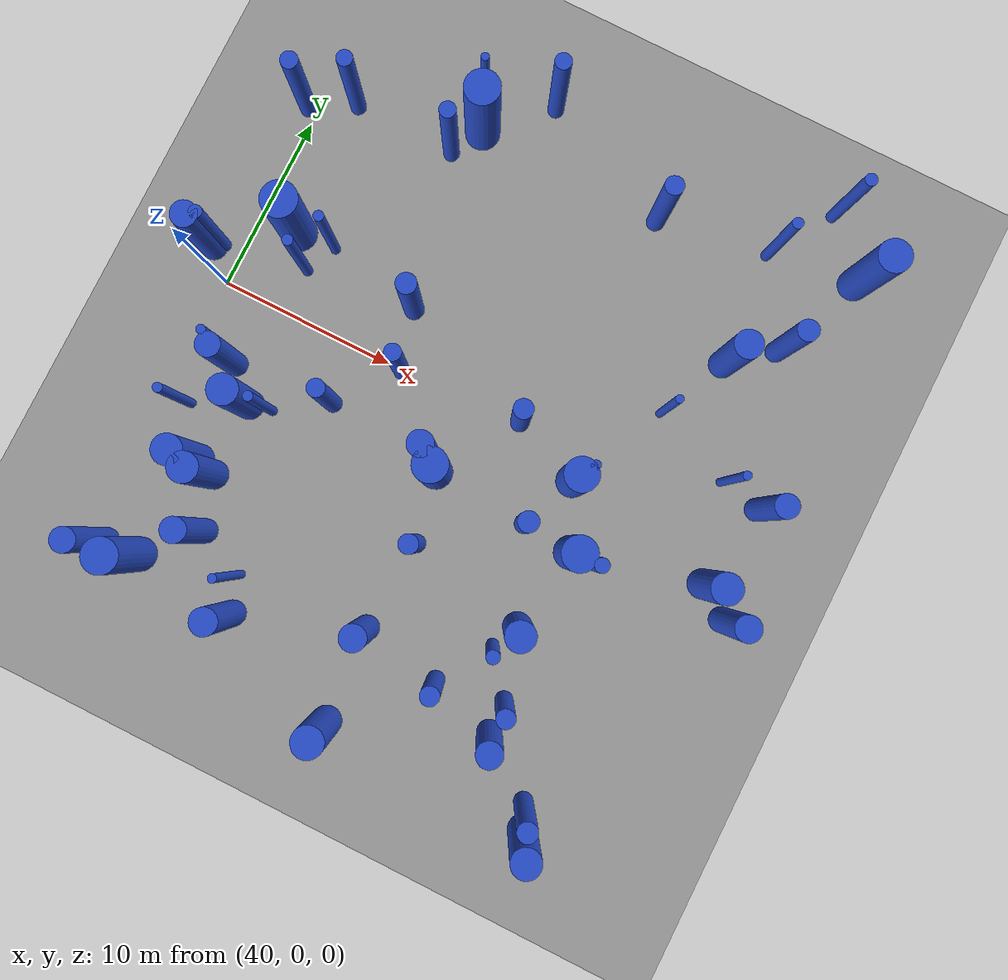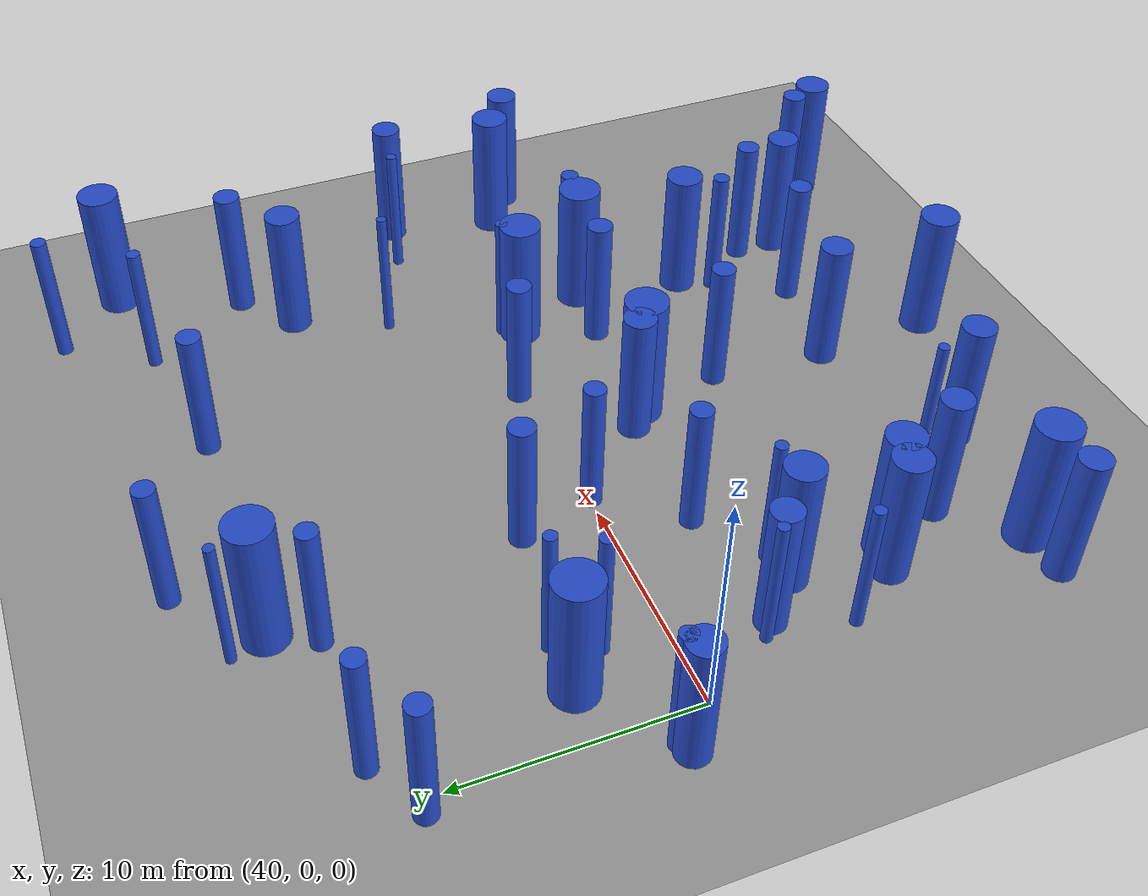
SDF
<sdf version="1.7">
 <world name="default">
  <model name="ground_plane_map">
   <static>1</static>
   <link name="link">
    <collision name="collision">
     <geometry><plane><normal>0 0 1</normal><size>110 50</size></plane></geometry>
     <surface>
      <contact><collide_without_contact>1</collide_without_contact></contact>
      <friction><ode><mu>100</mu><mu2>50</mu2></ode></friction>
     </surface>
    </collision>
    <visual name="visual">
     <cast_shadows>0</cast_shadows>
     <geometry><plane><normal>0 0 1</normal><size>110 50</size></plane></geometry>
     <material>
      <script><uri>file://media/materials/scripts/gazebo.material</uri><name>Gazebo/Grey</name></script>
     </material>
    </visual>
   </link>
   <pose>51 0 0 0 -0 0</pose>
  </model>
  <model name="0">
   <static>1</static>
   <link name="link">
    <inertial>
     <mass>2</mass>
     <inertia><ixx>6.32511</ixx><ixy>0</ixy><ixz>0</ixz><iyy>6.32511</iyy><iyz>0</iyz><izz>0.650222</izz></inertia>
    </inertial>
    <collision name="collision">
     <geometry><cylinder><length>6</length><radius>0.806364</radius></cylinder></geometry>
     <surface><contact><collide_without_contact>1</collide_without_contact></contact></surface>
    </collision>
    <visual name="visual">
     <geometry><cylinder><length>6</length><radius>0.806364</radius></cylinder></geometry>
     <material>
      <script><uri>file://media/materials/scripts/gazebo.material</uri><name>Gazebo/Blue</name></script>
     </material>
    </visual>
    <gravity>0</gravity>
   </link>
   <pose>43.1853 -9.25453 3 0 -0 0</pose>
  </model>
  <model name="3">
   <static>1</static>
   <link name="link">
    <inertial>
     <mass>2</mass>
     <inertia><ixx>6.32373</ixx><ixy>0</ixy><ixz>0</ixz><iyy>6.32373</iyy><iyz>0</iyz><izz>0.647451</izz></inertia>
    </inertial>
    <collision name="collision">
     <geometry><cylinder><length>6</length><radius>0.804643</radius></cylinder></geometry>
     <surface><contact><collide_without_contact>1</collide_without_contact></contact></surface>
    </collision>
    <visual name="visual">
     <geometry><cylinder><length>6</length><radius>0.804643</radius></cylinder></geometry>
     <material>
      <script><uri>file://media/materials/scripts/gazebo.material</uri><name>Gazebo/Blue</name></script>
     </material>
    </visual>
    <gravity>0</gravity>
   </link>
   <pose>62.6464 -9.57824 3 0 -0 0</pose>
  </model>
  <model name="6">
   <static>1</static>
   <link name="link">
    <inertial>
     <mass>2</mass>
     <inertia>
      <ixx>6.03936</ixx>
      <ixy>0</ixy>
      <ixz>0</ixz>
      <iyy>6.03936</iyy>
      <iyz>0</iyz>
      <izz>0.0787145</izz>
     </inertia>
    </inertial>
    <collision name="collision">
     <geometry><cylinder><length>6</length><radius>0.280561</radius></cylinder></geometry>
     <surface><contact><collide_without_contact>1</collide_without_contact></contact></surface>
    </collision>
    <visual name="visual">
     <geometry><cylinder><length>6</length><radius>0.280561</radius></cylinder></geometry>
     <material>
      <script><uri>file://media/materials/scripts/gazebo.material</uri><name>Gazebo/Blue</name></script>
     </material>
    </visual>
    <gravity>0</gravity>
   </link>
   <pose>44.4541 4.37326 3 0 -0 0</pose>
  </model>
  <model name="7">
   <static>1</static>
   <link name="link">
    <inertial>
     <mass>2</mass>
     <inertia><ixx>6.47364</ixx><ixy>0</ixy><ixz>0</ixz><iyy>6.47364</iyy><iyz>0</iyz><izz>0.947284</izz></inertia>
    </inertial>
    <collision name="collision">
     <geometry><cylinder><length>6</length><radius>0.973285</radius></cylinder></geometry>
     <surface><contact><collide_without_contact>1</collide_without_contact></contact></surface>
    </collision>
    <visual name="visual">
     <geometry><cylinder><length>6</length><radius>0.973285</radius></cylinder></geometry>
     <material>
      <script><uri>file://media/materials/scripts/gazebo.material</uri><name>Gazebo/Blue</name></script>
     </material>
    </visual>
    <gravity>0</gravity>
   </link>
   <pose>48.7457 13.9013 3 0 -0 0</pose>
  </model>
  <model name="8">
   <static>1</static>
   <link name="link">
    <inertial>
     <mass>2</mass>
     <inertia><ixx>6.35619</ixx><ixy>0</ixy><ixz>0</ixz><iyy>6.35619</iyy><iyz>0</iyz><izz>0.712374</izz></inertia>
    </inertial>
    <collision name="collision">
     <geometry><cylinder><length>6</length><radius>0.844022</radius></cylinder></geometry>
     <surface><contact><collide_without_contact>1</collide_without_contact></contact></surface>
    </collision>
    <visual name="visual">
     <geometry><cylinder><length>6</length><radius>0.844022</radius></cylinder></geometry>
     <material>
      <script><uri>file://media/materials/scripts/gazebo.material</uri><name>Gazebo/Blue</name></script>
     </material>
    </visual>
    <gravity>0</gravity>
   </link>
   <pose>55.7877 -18.618 3 0 -0 0</pose>
  </model>
  <model name="13">
   <static>1</static>
   <link name="link">
    <inertial>
     <mass>2</mass>
     <inertia><ixx>6.10399</ixx><ixy>0</ixy><ixz>0</ixz><iyy>6.10399</iyy><iyz>0</iyz><izz>0.207976</izz></inertia>
    </inertial>
    <collision name="collision">
     <geometry><cylinder><length>6</length><radius>0.456044</radius></cylinder></geometry>
     <surface><contact><collide_without_contact>1</collide_without_contact></contact></surface>
    </collision>
    <visual name="visual">
     <geometry><cylinder><length>6</length><radius>0.456044</radius></cylinder></geometry>
     <material>
      <script><uri>file://media/materials/scripts/gazebo.material</uri><name>Gazebo/Blue</name></script>
     </material>
    </visual>
    <gravity>0</gravity>
   </link>
   <pose>51.7868 16.9186 3 0 -0 0</pose>
  </model>
  <model name="14">
   <static>1</static>
   <link name="link">
    <inertial>
     <mass>2</mass>
     <inertia><ixx>6.20545</ixx><ixy>0</ixy><ixz>0</ixz><iyy>6.20545</iyy><iyz>0</iyz><izz>0.410899</izz></inertia>
    </inertial>
    <collision name="collision">
     <geometry><cylinder><length>6</length><radius>0.641014</radius></cylinder></geometry>
     <surface><contact><collide_without_contact>1</collide_without_contact></contact></surface>
    </collision>
    <visual name="visual">
     <geometry><cylinder><length>6</length><radius>0.641014</radius></cylinder></geometry>
     <material>
      <script><uri>file://media/materials/scripts/gazebo.material</uri><name>Gazebo/Blue</name></script>
     </material>
    </visual>
    <gravity>0</gravity>
   </link>
   <pose>71.3913 1.83682 3 0 -0 0</pose>
  </model>
  <model name="16">
   <static>1</static>
   <link name="link">
    <inertial>
     <mass>2</mass>
     <inertia><ixx>6.15456</ixx><ixy>0</ixy><ixz>0</ixz><iyy>6.15456</iyy><iyz>0</iyz><izz>0.309126</izz></inertia>
    </inertial>
    <collision name="collision">
     <geometry><cylinder><length>6</length><radius>0.555991</radius></cylinder></geometry>
     <surface><contact><collide_without_contact>1</collide_without_contact></contact></surface>
    </collision>
    <visual name="visual">
     <geometry><cylinder><length>6</length><radius>0.555991</radius></cylinder></geometry>
     <material>
      <script><uri>file://media/materials/scripts/gazebo.material</uri><name>Gazebo/Blue</name></script>
     </material>
    </visual>
    <gravity>0</gravity>
   </link>
   <pose>60.5216 -4.47597 3 0 -0 0</pose>
  </model>
  <model name="18">
   <static>1</static>
   <link name="link">
    <inertial>
     <mass>2</mass>
     <inertia><ixx>6.26305</ixx><ixy>0</ixy><ixz>0</ixz><iyy>6.26305</iyy><iyz>0</iyz><izz>0.5261</izz></inertia>
    </inertial>
    <collision name="collision">
     <geometry><cylinder><length>6</length><radius>0.725328</radius></cylinder></geometry>
     <surface><contact><collide_without_contact>1</collide_without_contact></contact></surface>
    </collision>
    <visual name="visual">
     <geometry><cylinder><length>6</length><radius>0.725328</radius></cylinder></geometry>
     <material>
      <script><uri>file://media/materials/scripts/gazebo.material</uri><name>Gazebo/Blue</name></script>
     </material>
    </visual>
    <gravity>0</gravity>
   </link>
   <pose>48.6871 -15.812 3 0 -0 0</pose>
  </model>
  <model name="20">
   <static>1</static>
   <link name="link">
    <inertial>
     <mass>2</mass>
     <inertia><ixx>6.44036</ixx><ixy>0</ixy><ixz>0</ixz><iyy>6.44036</iyy><iyz>0</iyz><izz>0.880718</izz></inertia>
    </inertial>
    <collision name="collision">
     <geometry><cylinder><length>6</length><radius>0.938466</radius></cylinder></geometry>
     <surface><contact><collide_without_contact>1</collide_without_contact></contact></surface>
    </collision>
    <visual name="visual">
     <geometry><cylinder><length>6</length><radius>0.938466</radius></cylinder></geometry>
     <material>
      <script><uri>file://media/materials/scripts/gazebo.material</uri><name>Gazebo/Blue</name></script>
     </material>
    </visual>
    <gravity>0</gravity>
   </link>
   <pose>54.9838 -4.14413 3 0 -0 0</pose>
  </model>
  <model name="24">
   <static>1</static>
   <link name="link">
    <inertial>
     <mass>2</mass>
     <inertia><ixx>6.03535</ixx><ixy>0</ixy><ixz>0</ixz><iyy>6.03535</iyy><iyz>0</iyz><izz>0.070702</izz></inertia>
    </inertial>
    <collision name="collision">
     <geometry><cylinder><length>6</length><radius>0.265898</radius></cylinder></geometry>
     <surface><contact><collide_without_contact>1</collide_without_contact></contact></surface>
    </collision>
    <visual name="visual">
     <geometry><cylinder><length>6</length><radius>0.265898</radius></cylinder></geometry>
     <material>
      <script><uri>file://media/materials/scripts/gazebo.material</uri><name>Gazebo/Blue</name></script>
     </material>
    </visual>
    <gravity>0</gravity>
   </link>
   <pose>62.2183 -0.535023 3 0 -0 0</pose>
  </model>
  <model name="29">
   <static>1</static>
   <link name="link">
    <inertial>
     <mass>2</mass>
     <inertia><ixx>6.0245</ixx><ixy>0</ixy><ixz>0</ixz><iyy>6.0245</iyy><iyz>0</iyz><izz>0.0489991</izz></inertia>
    </inertial>
    <collision name="collision">
     <geometry><cylinder><length>6</length><radius>0.221357</radius></cylinder></geometry>
     <surface><contact><collide_without_contact>1</collide_without_contact></contact></surface>
    </collision>
    <visual name="visual">
     <geometry><cylinder><length>6</length><radius>0.221357</radius></cylinder></geometry>
     <material>
      <script><uri>file://media/materials/scripts/gazebo.material</uri><name>Gazebo/Blue</name></script>
     </material>
    </visual>
    <gravity>0</gravity>
   </link>
   <pose>64.4402 4.20646 3 0 -0 0</pose>
  </model>
  <model name="37">
   <static>1</static>
   <link name="link">
    <inertial>
     <mass>2</mass>
     <inertia><ixx>6.05629</ixx><ixy>0</ixy><ixz>0</ixz><iyy>6.05629</iyy><iyz>0</iyz><izz>0.112587</izz></inertia>
    </inertial>
    <collision name="collision">
     <geometry><cylinder><length>6</length><radius>0.33554</radius></cylinder></geometry>
     <surface><contact><collide_without_contact>1</collide_without_contact></contact></surface>
    </collision>
    <visual name="visual">
     <geometry><cylinder><length>6</length><radius>0.33554</radius></cylinder></geometry>
     <material>
      <script><uri>file://media/materials/scripts/gazebo.material</uri><name>Gazebo/Blue</name></script>
     </material>
    </visual>
    <gravity>0</gravity>
   </link>
   <pose>68.1482 18.3489 3 0 -0 0</pose>
  </model>
  <model name="39">
   <static>1</static>
   <link name="link">
    <inertial>
     <mass>2</mass>
     <inertia><ixx>6.22946</ixx><ixy>0</ixy><ixz>0</ixz><iyy>6.22946</iyy><iyz>0</iyz><izz>0.458916</izz></inertia>
    </inertial>
    <collision name="collision">
     <geometry><cylinder><length>6</length><radius>0.677433</radius></cylinder></geometry>
     <surface><contact><collide_without_contact>1</collide_without_contact></contact></surface>
    </collision>
    <visual name="visual">
     <geometry><cylinder><length>6</length><radius>0.677433</radius></cylinder></geometry>
     <material>
      <script><uri>file://media/materials/scripts/gazebo.material</uri><name>Gazebo/Blue</name></script>
     </material>
    </visual>
    <gravity>0</gravity>
   </link>
   <pose>45.3096 -12.5666 3 0 -0 0</pose>
  </model>
  <model name="40">
   <static>1</static>
   <link name="link">
    <inertial>
     <mass>2</mass>
     <inertia><ixx>6.13935</ixx><ixy>0</ixy><ixz>0</ixz><iyy>6.13935</iyy><iyz>0</iyz><izz>0.278704</izz></inertia>
    </inertial>
    <collision name="collision">
     <geometry><cylinder><length>6</length><radius>0.527924</radius></cylinder></geometry>
     <surface><contact><collide_without_contact>1</collide_without_contact></contact></surface>
    </collision>
    <visual name="visual">
     <geometry><cylinder><length>6</length><radius>0.527924</radius></cylinder></geometry>
     <material>
      <script><uri>file://media/materials/scripts/gazebo.material</uri><name>Gazebo/Blue</name></script>
     </material>
    </visual>
    <gravity>0</gravity>
   </link>
   <pose>57.8383 0.334925 3 0 -0 0</pose>
  </model>
  <model name="45">
   <static>1</static>
   <link name="link">
    <inertial>
     <mass>2</mass>
     <inertia><ixx>6.24281</ixx><ixy>0</ixy><ixz>0</ixz><iyy>6.24281</iyy><iyz>0</iyz><izz>0.485616</izz></inertia>
    </inertial>
    <collision name="collision">
     <geometry><cylinder><length>6</length><radius>0.696861</radius></cylinder></geometry>
     <surface><contact><collide_without_contact>1</collide_without_contact></contact></surface>
    </collision>
    <visual name="visual">
     <geometry><cylinder><length>6</length><radius>0.696861</radius></cylinder></geometry>
     <material>
      <script><uri>file://media/materials/scripts/gazebo.material</uri><name>Gazebo/Blue</name></script>
     </material>
    </visual>
    <gravity>0</gravity>
   </link>
   <pose>72.2614 -4.32324 3 0 -0 0</pose>
  </model>
  <model name="47">
   <static>1</static>
   <link name="link">
    <inertial>
     <mass>2</mass>
     <inertia><ixx>6.07665</ixx><ixy>0</ixy><ixz>0</ixz><iyy>6.07665</iyy><iyz>0</iyz><izz>0.153298</izz></inertia>
    </inertial>
    <collision name="collision">
     <geometry><cylinder><length>6</length><radius>0.391533</radius></cylinder></geometry>
     <surface><contact><collide_without_contact>1</collide_without_contact></contact></surface>
    </collision>
    <visual name="visual">
     <geometry><cylinder><length>6</length><radius>0.391533</radius></cylinder></geometry>
     <material>
      <script><uri>file://media/materials/scripts/gazebo.material</uri><name>Gazebo/Blue</name></script>
     </material>
    </visual>
    <gravity>0</gravity>
   </link>
   <pose>64.6323 -4.75905 3 0 -0 0</pose>
  </model>
  <model name="48">
   <static>1</static>
   <link name="link">
    <inertial>
     <mass>2</mass>
     <inertia><ixx>6.2142</ixx><ixy>0</ixy><ixz>0</ixz><iyy>6.2142</iyy><iyz>0</iyz><izz>0.428398</izz></inertia>
    </inertial>
    <collision name="collision">
     <geometry><cylinder><length>6</length><radius>0.654521</radius></cylinder></geometry>
     <surface><contact><collide_without_contact>1</collide_without_contact></contact></surface>
    </collision>
    <visual name="visual">
     <geometry><cylinder><length>6</length><radius>0.654521</radius></cylinder></geometry>
     <material>
      <script><uri>file://media/materials/scripts/gazebo.material</uri><name>Gazebo/Blue</name></script>
     </material>
    </visual>
    <gravity>0</gravity>
   </link>
   <pose>42.5527 -3.78138 3 0 -0 0</pose>
  </model>
  <model name="49">
   <static>1</static>
   <link name="link">
    <inertial>
     <mass>2</mass>
     <inertia><ixx>6.14289</ixx><ixy>0</ixy><ixz>0</ixz><iyy>6.14289</iyy><iyz>0</iyz><izz>0.285777</izz></inertia>
    </inertial>
    <collision name="collision">
     <geometry><cylinder><length>6</length><radius>0.534581</radius></cylinder></geometry>
     <surface><contact><collide_without_contact>1</collide_without_contact></contact></surface>
    </collision>
    <visual name="visual">
     <geometry><cylinder><length>6</length><radius>0.534581</radius></cylinder></geometry>
     <material>
      <script><uri>file://media/materials/scripts/gazebo.material</uri><name>Gazebo/Blue</name></script>
     </material>
    </visual>
    <gravity>0</gravity>
   </link>
   <pose>67.0462 -17.6442 3 0 -0 0</pose>
  </model>
  <model name="52">
   <static>1</static>
   <link name="link">
    <inertial>
     <mass>2</mass>
     <inertia><ixx>6.10109</ixx><ixy>0</ixy><ixz>0</ixz><iyy>6.10109</iyy><iyz>0</iyz><izz>0.202182</izz></inertia>
    </inertial>
    <collision name="collision">
     <geometry><cylinder><length>6</length><radius>0.449647</radius></cylinder></geometry>
     <surface><contact><collide_without_contact>1</collide_without_contact></contact></surface>
    </collision>
    <visual name="visual">
     <geometry><cylinder><length>6</length><radius>0.449647</radius></cylinder></geometry>
     <material>
      <script><uri>file://media/materials/scripts/gazebo.material</uri><name>Gazebo/Blue</name></script>
     </material>
    </visual>
    <gravity>0</gravity>
   </link>
   <pose>47.719 12.0839 3 0 -0 0</pose>
  </model>
  <model name="57">
   <static>1</static>
   <link name="link">
    <inertial>
     <mass>2</mass>
     <inertia>
      <ixx>6.04355</ixx>
      <ixy>0</ixy>
      <ixz>0</ixz>
      <iyy>6.04355</iyy>
      <iyz>0</iyz>
      <izz>0.0870977</izz>
     </inertia>
    </inertial>
    <collision name="collision">
     <geometry><cylinder><length>6</length><radius>0.295123</radius></cylinder></geometry>
     <surface><contact><collide_without_contact>1</collide_without_contact></contact></surface>
    </collision>
    <visual name="visual">
     <geometry><cylinder><length>6</length><radius>0.295123</radius></cylinder></geometry>
     <material>
      <script><uri>file://media/materials/scripts/gazebo.material</uri><name>Gazebo/Blue</name></script>
     </material>
    </visual>
    <gravity>0</gravity>
   </link>
   <pose>65.8384 14.7256 3 0 -0 0</pose>
  </model>
  <model name="62">
   <static>1</static>
   <link name="link">
    <inertial>
     <mass>2</mass>
     <inertia>
      <ixx>6.02704</ixx>
      <ixy>0</ixy>
      <ixz>0</ixz>
      <iyy>6.02704</iyy>
      <iyz>0</iyz>
      <izz>0.0540705</izz>
     </inertia>
    </inertial>
    <collision name="collision">
     <geometry><cylinder><length>6</length><radius>0.232531</radius></cylinder></geometry>
     <surface><contact><collide_without_contact>1</collide_without_contact></contact></surface>
    </collision>
    <visual name="visual">
     <geometry><cylinder><length>6</length><radius>0.232531</radius></cylinder></geometry>
     <material>
      <script><uri>file://media/materials/scripts/gazebo.material</uri><name>Gazebo/Blue</name></script>
     </material>
    </visual>
    <gravity>0</gravity>
   </link>
   <pose>69.0155 2.30709 3 0 -0 0</pose>
  </model>
  <model name="64">
   <static>1</static>
   <link name="link">
    <inertial>
     <mass>2</mass>
     <inertia><ixx>6.28961</ixx><ixy>0</ixy><ixz>0</ixz><iyy>6.28961</iyy><iyz>0</iyz><izz>0.579212</izz></inertia>
    </inertial>
    <collision name="collision">
     <geometry><cylinder><length>6</length><radius>0.76106</radius></cylinder></geometry>
     <surface><contact><collide_without_contact>1</collide_without_contact></contact></surface>
    </collision>
    <visual name="visual">
     <geometry><cylinder><length>6</length><radius>0.76106</radius></cylinder></geometry>
     <material>
      <script><uri>file://media/materials/scripts/gazebo.material</uri><name>Gazebo/Blue</name></script>
     </material>
    </visual>
    <gravity>0</gravity>
   </link>
   <pose>66.2997 8.17107 3 0 -0 0</pose>
  </model>
  <model name="65">
   <static>1</static>
   <link name="link">
    <inertial>
     <mass>2</mass>
     <inertia><ixx>6.25355</ixx><ixy>0</ixy><ixz>0</ixz><iyy>6.25355</iyy><iyz>0</iyz><izz>0.507105</izz></inertia>
    </inertial>
    <collision name="collision">
     <geometry><cylinder><length>6</length><radius>0.712113</radius></cylinder></geometry>
     <surface><contact><collide_without_contact>1</collide_without_contact></contact></surface>
    </collision>
    <visual name="visual">
     <geometry><cylinder><length>6</length><radius>0.712113</radius></cylinder></geometry>
     <material>
      <script><uri>file://media/materials/scripts/gazebo.material</uri><name>Gazebo/Blue</name></script>
     </material>
    </visual>
    <gravity>0</gravity>
   </link>
   <pose>38.4266 1.46313 3 0 -0 0</pose>
  </model>
  <model name="69">
   <static>1</static>
   <link name="link">
    <inertial>
     <mass>2</mass>
     <inertia><ixx>6.13304</ixx><ixy>0</ixy><ixz>0</ixz><iyy>6.13304</iyy><iyz>0</iyz><izz>0.266084</izz></inertia>
    </inertial>
    <collision name="collision">
     <geometry><cylinder><length>6</length><radius>0.515834</radius></cylinder></geometry>
     <surface><contact><collide_without_contact>1</collide_without_contact></contact></surface>
    </collision>
    <visual name="visual">
     <geometry><cylinder><length>6</length><radius>0.515834</radius></cylinder></geometry>
     <material>
      <script><uri>file://media/materials/scripts/gazebo.material</uri><name>Gazebo/Blue</name></script>
     </material>
    </visual>
    <gravity>0</gravity>
   </link>
   <pose>55.7984 -8.05058 3 0 -0 0</pose>
  </model>
  <model name="71">
   <static>1</static>
   <link name="link">
    <inertial>
     <mass>2</mass>
     <inertia>
      <ixx>6.03294</ixx>
      <ixy>0</ixy>
      <ixz>0</ixz>
      <iyy>6.03294</iyy>
      <iyz>0</iyz>
      <izz>0.0658899</izz>
     </inertia>
    </inertial>
    <collision name="collision">
     <geometry><cylinder><length>6</length><radius>0.25669</radius></cylinder></geometry>
     <surface><contact><collide_without_contact>1</collide_without_contact></contact></surface>
    </collision>
    <visual name="visual">
     <geometry><cylinder><length>6</length><radius>0.25669</radius></cylinder></geometry>
     <material>
      <script><uri>file://media/materials/scripts/gazebo.material</uri><name>Gazebo/Blue</name></script>
     </material>
    </visual>
    <gravity>0</gravity>
   </link>
   <pose>41.3666 -6.77114 3 0 -0 0</pose>
  </model>
  <model name="75">
   <static>1</static>
   <link name="link">
    <inertial>
     <mass>2</mass>
     <inertia><ixx>6.43782</ixx><ixy>0</ixy><ixz>0</ixz><iyy>6.43782</iyy><iyz>0</iyz><izz>0.87563</izz></inertia>
    </inertial>
    <collision name="collision">
     <geometry><cylinder><length>6</length><radius>0.935751</radius></cylinder></geometry>
     <surface><contact><collide_without_contact>1</collide_without_contact></contact></surface>
    </collision>
    <visual name="visual">
     <geometry><cylinder><length>6</length><radius>0.935751</radius></cylinder></geometry>
     <material>
      <script><uri>file://media/materials/scripts/gazebo.material</uri><name>Gazebo/Blue</name></script>
     </material>
    </visual>
    <gravity>0</gravity>
   </link>
   <pose>63.437 -4.74428 3 0 -0 0</pose>
  </model>
  <model name="78">
   <static>1</static>
   <link name="link">
    <inertial>
     <mass>2</mass>
     <inertia><ixx>6.15615</ixx><ixy>0</ixy><ixz>0</ixz><iyy>6.15615</iyy><iyz>0</iyz><izz>0.312297</izz></inertia>
    </inertial>
    <collision name="collision">
     <geometry><cylinder><length>6</length><radius>0.558835</radius></cylinder></geometry>
     <surface><contact><collide_without_contact>1</collide_without_contact></contact></surface>
    </collision>
    <visual name="visual">
     <geometry><cylinder><length>6</length><radius>0.558835</radius></cylinder></geometry>
     <material>
      <script><uri>file://media/materials/scripts/gazebo.material</uri><name>Gazebo/Blue</name></script>
     </material>
    </visual>
    <gravity>0</gravity>
   </link>
   <pose>49.8746 3.30067 3 0 -0 0</pose>
  </model>
  <model name="80">
   <static>1</static>
   <link name="link">
    <inertial>
     <mass>2</mass>
     <inertia><ixx>6.33758</ixx><ixy>0</ixy><ixz>0</ixz><iyy>6.33758</iyy><iyz>0</iyz><izz>0.675158</izz></inertia>
    </inertial>
    <collision name="collision">
     <geometry><cylinder><length>6</length><radius>0.82168</radius></cylinder></geometry>
     <surface><contact><collide_without_contact>1</collide_without_contact></contact></surface>
    </collision>
    <visual name="visual">
     <geometry><cylinder><length>6</length><radius>0.82168</radius></cylinder></geometry>
     <material>
      <script><uri>file://media/materials/scripts/gazebo.material</uri><name>Gazebo/Blue</name></script>
     </material>
    </visual>
    <gravity>0</gravity>
   </link>
   <pose>44.2351 -5.42668 3 0 -0 0</pose>
  </model>
  <model name="81">
   <static>1</static>
   <link name="link">
    <inertial>
     <mass>2</mass>
     <inertia><ixx>6.39682</ixx><ixy>0</ixy><ixz>0</ixz><iyy>6.39682</iyy><iyz>0</iyz><izz>0.793637</izz></inertia>
    </inertial>
    <collision name="collision">
     <geometry><cylinder><length>6</length><radius>0.890863</radius></cylinder></geometry>
     <surface><contact><collide_without_contact>1</collide_without_contact></contact></surface>
    </collision>
    <visual name="visual">
     <geometry><cylinder><length>6</length><radius>0.890863</radius></cylinder></geometry>
     <material>
      <script><uri>file://media/materials/scripts/gazebo.material</uri><name>Gazebo/Blue</name></script>
     </material>
    </visual>
    <gravity>0</gravity>
   </link>
   <pose>70.8405 15.4024 3 0 -0 0</pose>
  </model>
  <model name="84">
   <static>1</static>
   <link name="link">
    <inertial>
     <mass>2</mass>
     <inertia><ixx>6.06422</ixx><ixy>0</ixy><ixz>0</ixz><iyy>6.06422</iyy><iyz>0</iyz><izz>0.128433</izz></inertia>
    </inertial>
    <collision name="collision">
     <geometry><cylinder><length>6</length><radius>0.358376</radius></cylinder></geometry>
     <surface><contact><collide_without_contact>1</collide_without_contact></contact></surface>
    </collision>
    <visual name="visual">
     <geometry><cylinder><length>6</length><radius>0.358376</radius></cylinder></geometry>
     <material>
      <script><uri>file://media/materials/scripts/gazebo.material</uri><name>Gazebo/Blue</name></script>
     </material>
    </visual>
    <gravity>0</gravity>
   </link>
   <pose>38.8906 1.8224 3 0 -0 0</pose>
  </model>
  <model name="87">
   <static>1</static>
   <link name="link">
    <inertial>
     <mass>2</mass>
     <inertia><ixx>6.10487</ixx><ixy>0</ixy><ixz>0</ixz><iyy>6.10487</iyy><iyz>0</iyz><izz>0.209735</izz></inertia>
    </inertial>
    <collision name="collision">
     <geometry><cylinder><length>6</length><radius>0.457968</radius></cylinder></geometry>
     <surface><contact><collide_without_contact>1</collide_without_contact></contact></surface>
    </collision>
    <visual name="visual">
     <geometry><cylinder><length>6</length><radius>0.457968</radius></cylinder></geometry>
     <material>
      <script><uri>file://media/materials/scripts/gazebo.material</uri><name>Gazebo/Blue</name></script>
     </material>
    </visual>
    <gravity>0</gravity>
   </link>
   <pose>50.8455 -0.052897 3 0 -0 0</pose>
  </model>
  <model name="88">
   <static>1</static>
   <link name="link">
    <inertial>
     <mass>2</mass>
     <inertia><ixx>6.06537</ixx><ixy>0</ixy><ixz>0</ixz><iyy>6.06537</iyy><iyz>0</iyz><izz>0.13075</izz></inertia>
    </inertial>
    <collision name="collision">
     <geometry><cylinder><length>6</length><radius>0.361593</radius></cylinder></geometry>
     <surface><contact><collide_without_contact>1</collide_without_contact></contact></surface>
    </collision>
    <visual name="visual">
     <geometry><cylinder><length>6</length><radius>0.361593</radius></cylinder></geometry>
     <material>
      <script><uri>file://media/materials/scripts/gazebo.material</uri><name>Gazebo/Blue</name></script>
     </material>
    </visual>
    <gravity>0</gravity>
   </link>
   <pose>61.8977 -11.0457 3 0 -0 0</pose>
  </model>
  <model name="99">
   <static>1</static>
   <link name="link">
    <inertial>
     <mass>2</mass>
     <inertia><ixx>6.13049</ixx><ixy>0</ixy><ixz>0</ixz><iyy>6.13049</iyy><iyz>0</iyz><izz>0.260973</izz></inertia>
    </inertial>
    <collision name="collision">
     <geometry><cylinder><length>6</length><radius>0.510855</radius></cylinder></geometry>
     <surface><contact><collide_without_contact>1</collide_without_contact></contact></surface>
    </collision>
    <visual name="visual">
     <geometry><cylinder><length>6</length><radius>0.510855</radius></cylinder></geometry>
     <material>
      <script><uri>file://media/materials/scripts/gazebo.material</uri><name>Gazebo/Blue</name></script>
     </material>
    </visual>
    <gravity>0</gravity>
   </link>
   <pose>59.5506 13.6937 3 0 -0 0</pose>
  </model>
  <model name="102">
   <static>1</static>
   <link name="link">
    <inertial>
     <mass>2</mass>
     <inertia><ixx>6.09779</ixx><ixy>0</ixy><ixz>0</ixz><iyy>6.09779</iyy><iyz>0</iyz><izz>0.19558</izz></inertia>
    </inertial>
    <collision name="collision">
     <geometry><cylinder><length>6</length><radius>0.442244</radius></cylinder></geometry>
     <surface><contact><collide_without_contact>1</collide_without_contact></contact></surface>
    </collision>
    <visual name="visual">
     <geometry><cylinder><length>6</length><radius>0.442244</radius></cylinder></geometry>
     <material>
      <script><uri>file://media/materials/scripts/gazebo.material</uri><name>Gazebo/Blue</name></script>
     </material>
    </visual>
    <gravity>0</gravity>
   </link>
   <pose>41.8886 12.1273 3 0 -0 0</pose>
  </model>
  <model name="106">
   <static>1</static>
   <link name="link">
    <inertial>
     <mass>2</mass>
     <inertia><ixx>6.48942</ixx><ixy>0</ixy><ixz>0</ixz><iyy>6.48942</iyy><iyz>0</iyz><izz>0.978843</izz></inertia>
    </inertial>
    <collision name="collision">
     <geometry><cylinder><length>6</length><radius>0.989365</radius></cylinder></geometry>
     <surface><contact><collide_without_contact>1</collide_without_contact></contact></surface>
    </collision>
    <visual name="visual">
     <geometry><cylinder><length>6</length><radius>0.989365</radius></cylinder></geometry>
     <material>
      <script><uri>file://media/materials/scripts/gazebo.material</uri><name>Gazebo/Blue</name></script>
     </material>
    </visual>
    <gravity>0</gravity>
   </link>
   <pose>42.2898 4.24967 3 0 -0 0</pose>
  </model>
  <model name="107">
   <static>1</static>
   <link name="link">
    <inertial>
     <mass>2</mass>
     <inertia>
      <ixx>6.02823</ixx>
      <ixy>0</ixy>
      <ixz>0</ixz>
      <iyy>6.02823</iyy>
      <iyz>0</iyz>
      <izz>0.0564663</izz>
     </inertia>
    </inertial>
    <collision name="collision">
     <geometry><cylinder><length>6</length><radius>0.237626</radius></cylinder></geometry>
     <surface><contact><collide_without_contact>1</collide_without_contact></contact></surface>
    </collision>
    <visual name="visual">
     <geometry><cylinder><length>6</length><radius>0.237626</radius></cylinder></geometry>
     <material>
      <script><uri>file://media/materials/scripts/gazebo.material</uri><name>Gazebo/Blue</name></script>
     </material>
    </visual>
    <gravity>0</gravity>
   </link>
   <pose>48.1028 -13.7796 3 0 -0 0</pose>
  </model>
  <model name="108">
   <static>1</static>
   <link name="link">
    <inertial>
     <mass>2</mass>
     <inertia><ixx>6.24076</ixx><ixy>0</ixy><ixz>0</ixz><iyy>6.24076</iyy><iyz>0</iyz><izz>0.481525</izz></inertia>
    </inertial>
    <collision name="collision">
     <geometry><cylinder><length>6</length><radius>0.69392</radius></cylinder></geometry>
     <surface><contact><collide_without_contact>1</collide_without_contact></contact></surface>
    </collision>
    <visual name="visual">
     <geometry><cylinder><length>6</length><radius>0.69392</radius></cylinder></geometry>
     <material>
      <script><uri>file://media/materials/scripts/gazebo.material</uri><name>Gazebo/Blue</name></script>
     </material>
    </visual>
    <gravity>0</gravity>
   </link>
   <pose>63.8163 -15.2405 3 0 -0 0</pose>
  </model>
  <model name="109">
   <static>1</static>
   <link name="link">
    <inertial>
     <mass>2</mass>
     <inertia><ixx>6.11392</ixx><ixy>0</ixy><ixz>0</ixz><iyy>6.11392</iyy><iyz>0</iyz><izz>0.227848</izz></inertia>
    </inertial>
    <collision name="collision">
     <geometry><cylinder><length>6</length><radius>0.477334</radius></cylinder></geometry>
     <surface><contact><collide_without_contact>1</collide_without_contact></contact></surface>
    </collision>
    <visual name="visual">
     <geometry><cylinder><length>6</length><radius>0.477334</radius></cylinder></geometry>
     <material>
      <script><uri>file://media/materials/scripts/gazebo.material</uri><name>Gazebo/Blue</name></script>
     </material>
    </visual>
    <gravity>0</gravity>
   </link>
   <pose>39.4527 10.7929 3 0 -0 0</pose>
  </model>
  <model name="110">
   <static>1</static>
   <link name="link">
    <inertial>
     <mass>2</mass>
     <inertia><ixx>6.40953</ixx><ixy>0</ixy><ixz>0</ixz><iyy>6.40953</iyy><iyz>0</iyz><izz>0.819064</izz></inertia>
    </inertial>
    <collision name="collision">
     <geometry><cylinder><length>6</length><radius>0.905021</radius></cylinder></geometry>
     <surface><contact><collide_without_contact>1</collide_without_contact></contact></surface>
    </collision>
    <visual name="visual">
     <geometry><cylinder><length>6</length><radius>0.905021</radius></cylinder></geometry>
     <material>
      <script><uri>file://media/materials/scripts/gazebo.material</uri><name>Gazebo/Blue</name></script>
     </material>
    </visual>
    <gravity>0</gravity>
   </link>
   <pose>61.8127 -1.25307 3 0 -0 0</pose>
  </model>
  <model name="119">
   <static>1</static>
   <link name="link">
    <inertial>
     <mass>2</mass>
     <inertia><ixx>6.33909</ixx><ixy>0</ixy><ixz>0</ixz><iyy>6.33909</iyy><iyz>0</iyz><izz>0.67818</izz></inertia>
    </inertial>
    <collision name="collision">
     <geometry><cylinder><length>6</length><radius>0.823517</radius></cylinder></geometry>
     <surface><contact><collide_without_contact>1</collide_without_contact></contact></surface>
    </collision>
    <visual name="visual">
     <geometry><cylinder><length>6</length><radius>0.823517</radius></cylinder></geometry>
     <material>
      <script><uri>file://media/materials/scripts/gazebo.material</uri><name>Gazebo/Blue</name></script>
     </material>
    </visual>
    <gravity>0</gravity>
   </link>
   <pose>70.5233 -3.06398 3 0 -0 0</pose>
  </model>
  <model name="120">
   <static>1</static>
   <link name="link">
    <inertial>
     <mass>2</mass>
     <inertia><ixx>6.04227</ixx><ixy>0</ixy><ixz>0</ixz><iyy>6.04227</iyy><iyz>0</iyz><izz>0.084539</izz></inertia>
    </inertial>
    <collision name="collision">
     <geometry><cylinder><length>6</length><radius>0.290756</radius></cylinder></geometry>
     <surface><contact><collide_without_contact>1</collide_without_contact></contact></surface>
    </collision>
    <visual name="visual">
     <geometry><cylinder><length>6</length><radius>0.290756</radius></cylinder></geometry>
     <material>
      <script><uri>file://media/materials/scripts/gazebo.material</uri><name>Gazebo/Blue</name></script>
     </material>
    </visual>
    <gravity>0</gravity>
   </link>
   <pose>43.6401 2.60213 3 0 -0 0</pose>
  </model>
  <model name="121">
   <static>1</static>
   <link name="link">
    <inertial>
     <mass>2</mass>
     <inertia><ixx>6.44992</ixx><ixy>0</ixy><ixz>0</ixz><iyy>6.44992</iyy><iyz>0</iyz><izz>0.899849</izz></inertia>
    </inertial>
    <collision name="collision">
     <geometry><cylinder><length>6</length><radius>0.948604</radius></cylinder></geometry>
     <surface><contact><collide_without_contact>1</collide_without_contact></contact></surface>
    </collision>
    <visual name="visual">
     <geometry><cylinder><length>6</length><radius>0.948604</radius></cylinder></geometry>
     <material>
      <script><uri>file://media/materials/scripts/gazebo.material</uri><name>Gazebo/Blue</name></script>
     </material>
    </visual>
    <gravity>0</gravity>
   </link>
   <pose>42.7242 -15.2712 3 0 -0 0</pose>
  </model>
  <model name="138">
   <static>1</static>
   <link name="link">
    <inertial>
     <mass>2</mass>
     <inertia>
      <ixx>6.03582</ixx>
      <ixy>0</ixy>
      <ixz>0</ixz>
      <iyy>6.03582</iyy>
      <iyz>0</iyz>
      <izz>0.0716336</izz>
     </inertia>
    </inertial>
    <collision name="collision">
     <geometry><cylinder><length>6</length><radius>0.267645</radius></cylinder></geometry>
     <surface><contact><collide_without_contact>1</collide_without_contact></contact></surface>
    </collision>
    <visual name="visual">
     <geometry><cylinder><length>6</length><radius>0.267645</radius></cylinder></geometry>
     <material>
      <script><uri>file://media/materials/scripts/gazebo.material</uri><name>Gazebo/Blue</name></script>
     </material>
    </visual>
    <gravity>0</gravity>
   </link>
   <pose>45.5107 -5.15977 3 0 -0 0</pose>
  </model>
  <model name="139">
   <static>1</static>
   <link name="link">
    <inertial>
     <mass>2</mass>
     <inertia>
      <ixx>6.03033</ixx>
      <ixy>0</ixy>
      <ixz>0</ixz>
      <iyy>6.03033</iyy>
      <iyz>0</iyz>
      <izz>0.0606566</izz>
     </inertia>
    </inertial>
    <collision name="collision">
     <geometry><cylinder><length>6</length><radius>0.246286</radius></cylinder></geometry>
     <surface><contact><collide_without_contact>1</collide_without_contact></contact></surface>
    </collision>
    <visual name="visual">
     <geometry><cylinder><length>6</length><radius>0.246286</radius></cylinder></geometry>
     <material>
      <script><uri>file://media/materials/scripts/gazebo.material</uri><name>Gazebo/Blue</name></script>
     </material>
    </visual>
    <gravity>0</gravity>
   </link>
   <pose>41.9076 -3.27021 3 0 -0 0</pose>
  </model>
  <model name="143">
   <static>1</static>
   <link name="link">
    <inertial>
     <mass>2</mass>
     <inertia><ixx>6.33139</ixx><ixy>0</ixy><ixz>0</ixz><iyy>6.33139</iyy><iyz>0</iyz><izz>0.662779</izz></inertia>
    </inertial>
    <collision name="collision">
     <geometry><cylinder><length>6</length><radius>0.814113</radius></cylinder></geometry>
     <surface><contact><collide_without_contact>1</collide_without_contact></contact></surface>
    </collision>
    <visual name="visual">
     <geometry><cylinder><length>6</length><radius>0.814113</radius></cylinder></geometry>
     <material>
      <script><uri>file://media/materials/scripts/gazebo.material</uri><name>Gazebo/Blue</name></script>
     </material>
    </visual>
    <gravity>0</gravity>
   </link>
   <pose>44.2828 -9.67131 3 0 -0 0</pose>
  </model>
  <model name="147">
   <static>1</static>
   <link name="link">
    <inertial>
     <mass>2</mass>
     <inertia><ixx>6.2472</ixx><ixy>0</ixy><ixz>0</ixz><iyy>6.2472</iyy><iyz>0</iyz><izz>0.494401</izz></inertia>
    </inertial>
    <collision name="collision">
     <geometry><cylinder><length>6</length><radius>0.703136</radius></cylinder></geometry>
     <surface><contact><collide_without_contact>1</collide_without_contact></contact></surface>
    </collision>
    <visual name="visual">
     <geometry><cylinder><length>6</length><radius>0.703136</radius></cylinder></geometry>
     <material>
      <script><uri>file://media/materials/scripts/gazebo.material</uri><name>Gazebo/Blue</name></script>
     </material>
    </visual>
    <gravity>0</gravity>
   </link>
   <pose>55.4572 -13.2677 3 0 -0 0</pose>
  </model>
  <model name="148">
   <static>1</static>
   <link name="link">
    <inertial>
     <mass>2</mass>
     <inertia><ixx>6.16655</ixx><ixy>0</ixy><ixz>0</ixz><iyy>6.16655</iyy><iyz>0</iyz><izz>0.3331</izz></inertia>
    </inertial>
    <collision name="collision">
     <geometry><cylinder><length>6</length><radius>0.577148</radius></cylinder></geometry>
     <surface><contact><collide_without_contact>1</collide_without_contact></contact></surface>
    </collision>
    <visual name="visual">
     <geometry><cylinder><length>6</length><radius>0.577148</radius></cylinder></geometry>
     <material>
      <script><uri>file://media/materials/scripts/gazebo.material</uri><name>Gazebo/Blue</name></script>
     </material>
    </visual>
    <gravity>0</gravity>
   </link>
   <pose>68.6122 10.1034 3 0 -0 0</pose>
  </model>
  <model name="151">
   <static>1</static>
   <link name="link">
    <inertial>
     <mass>2</mass>
     <inertia><ixx>6.22131</ixx><ixy>0</ixy><ixz>0</ixz><iyy>6.22131</iyy><iyz>0</iyz><izz>0.442615</izz></inertia>
    </inertial>
    <collision name="collision">
     <geometry><cylinder><length>6</length><radius>0.665293</radius></cylinder></geometry>
     <surface><contact><collide_without_contact>1</collide_without_contact></contact></surface>
    </collision>
    <visual name="visual">
     <geometry><cylinder><length>6</length><radius>0.665293</radius></cylinder></geometry>
     <material>
      <script><uri>file://media/materials/scripts/gazebo.material</uri><name>Gazebo/Blue</name></script>
     </material>
    </visual>
    <gravity>0</gravity>
   </link>
   <pose>40.7616 -15.3892 3 0 -0 0</pose>
  </model>
  <model name="156">
   <static>1</static>
   <link name="link">
    <inertial>
     <mass>2</mass>
     <inertia><ixx>6.2462</ixx><ixy>0</ixy><ixz>0</ixz><iyy>6.2462</iyy><iyz>0</iyz><izz>0.492399</izz></inertia>
    </inertial>
    <collision name="collision">
     <geometry><cylinder><length>6</length><radius>0.701712</radius></cylinder></geometry>
     <surface><contact><collide_without_contact>1</collide_without_contact></contact></surface>
    </collision>
    <visual name="visual">
     <geometry><cylinder><length>6</length><radius>0.701712</radius></cylinder></geometry>
     <material>
      <script><uri>file://media/materials/scripts/gazebo.material</uri><name>Gazebo/Blue</name></script>
     </material>
    </visual>
    <gravity>0</gravity>
   </link>
   <pose>54.0935 -3.44264 3 0 -0 0</pose>
  </model>
  <model name="158">
   <static>1</static>
   <link name="link">
    <inertial>
     <mass>2</mass>
     <inertia><ixx>6.12372</ixx><ixy>0</ixy><ixz>0</ixz><iyy>6.12372</iyy><iyz>0</iyz><izz>0.24745</izz></inertia>
    </inertial>
    <collision name="collision">
     <geometry><cylinder><length>6</length><radius>0.497443</radius></cylinder></geometry>
     <surface><contact><collide_without_contact>1</collide_without_contact></contact></surface>
    </collision>
    <visual name="visual">
     <geometry><cylinder><length>6</length><radius>0.497443</radius></cylinder></geometry>
     <material>
      <script><uri>file://media/materials/scripts/gazebo.material</uri><name>Gazebo/Blue</name></script>
     </material>
    </visual>
    <gravity>0</gravity>
   </link>
   <pose>63.7529 -13.376 3 0 -0 0</pose>
  </model>
  <model name="159">
   <static>1</static>
   <link name="link">
    <inertial>
     <mass>2</mass>
     <inertia><ixx>6.12758</ixx><ixy>0</ixy><ixz>0</ixz><iyy>6.12758</iyy><iyz>0</iyz><izz>0.255169</izz></inertia>
    </inertial>
    <collision name="collision">
     <geometry><cylinder><length>6</length><radius>0.505142</radius></cylinder></geometry>
     <surface><contact><collide_without_contact>1</collide_without_contact></contact></surface>
    </collision>
    <visual name="visual">
     <geometry><cylinder><length>6</length><radius>0.505142</radius></cylinder></geometry>
     <material>
      <script><uri>file://media/materials/scripts/gazebo.material</uri><name>Gazebo/Blue</name></script>
     </material>
    </visual>
    <gravity>0</gravity>
   </link>
   <pose>60.0142 -14.0545 3 0 -0 0</pose>
  </model>
  <model name="160">
   <static>1</static>
   <link name="link">
    <inertial>
     <mass>2</mass>
     <inertia><ixx>6.11676</ixx><ixy>0</ixy><ixz>0</ixz><iyy>6.11676</iyy><iyz>0</iyz><izz>0.233527</izz></inertia>
    </inertial>
    <collision name="collision">
     <geometry><cylinder><length>6</length><radius>0.483246</radius></cylinder></geometry>
     <surface><contact><collide_without_contact>1</collide_without_contact></contact></surface>
    </collision>
    <visual name="visual">
     <geometry><cylinder><length>6</length><radius>0.483246</radius></cylinder></geometry>
     <material>
      <script><uri>file://media/materials/scripts/gazebo.material</uri><name>Gazebo/Blue</name></script>
     </material>
    </visual>
    <gravity>0</gravity>
   </link>
   <pose>48.293 -3.31366 3 0 -0 0</pose>
  </model>
  <model name="163">
   <static>1</static>
   <link name="link">
    <inertial>
     <mass>2</mass>
     <inertia><ixx>6.0243</ixx><ixy>0</ixy><ixz>0</ixz><iyy>6.0243</iyy><iyz>0</iyz><izz>0.0485927</izz></inertia>
    </inertial>
    <collision name="collision">
     <geometry><cylinder><length>6</length><radius>0.220437</radius></cylinder></geometry>
     <surface><contact><collide_without_contact>1</collide_without_contact></contact></surface>
    </collision>
    <visual name="visual">
     <geometry><cylinder><length>6</length><radius>0.220437</radius></cylinder></geometry>
     <material>
      <script><uri>file://media/materials/scripts/gazebo.material</uri><name>Gazebo/Blue</name></script>
     </material>
    </visual>
    <gravity>0</gravity>
   </link>
   <pose>48.1654 15.3705 3 0 -0 0</pose>
  </model>
  <model name="165">
   <static>1</static>
   <link name="link">
    <inertial>
     <mass>2</mass>
     <inertia><ixx>6.31487</ixx><ixy>0</ixy><ixz>0</ixz><iyy>6.31487</iyy><iyz>0</iyz><izz>0.629742</izz></inertia>
    </inertial>
    <collision name="collision">
     <geometry><cylinder><length>6</length><radius>0.793563</radius></cylinder></geometry>
     <surface><contact><collide_without_contact>1</collide_without_contact></contact></surface>
    </collision>
    <visual name="visual">
     <geometry><cylinder><length>6</length><radius>0.793563</radius></cylinder></geometry>
     <material>
      <script><uri>file://media/materials/scripts/gazebo.material</uri><name>Gazebo/Blue</name></script>
     </material>
    </visual>
    <gravity>0</gravity>
   </link>
   <pose>67.6325 -18.9597 3 0 -0 0</pose>
  </model>
 </world>
</sdf>
